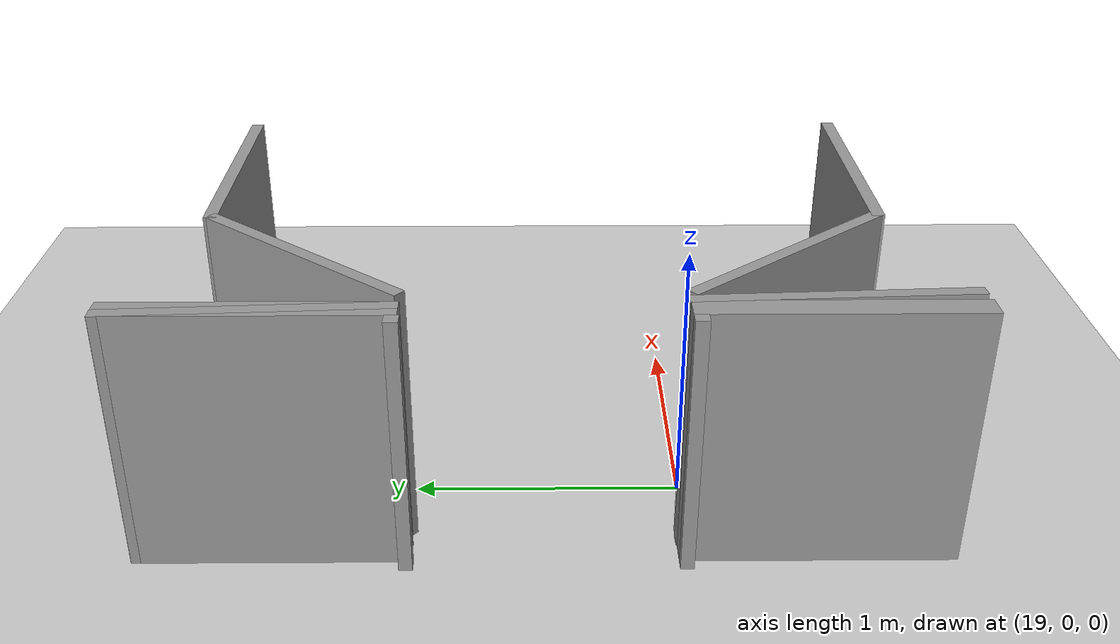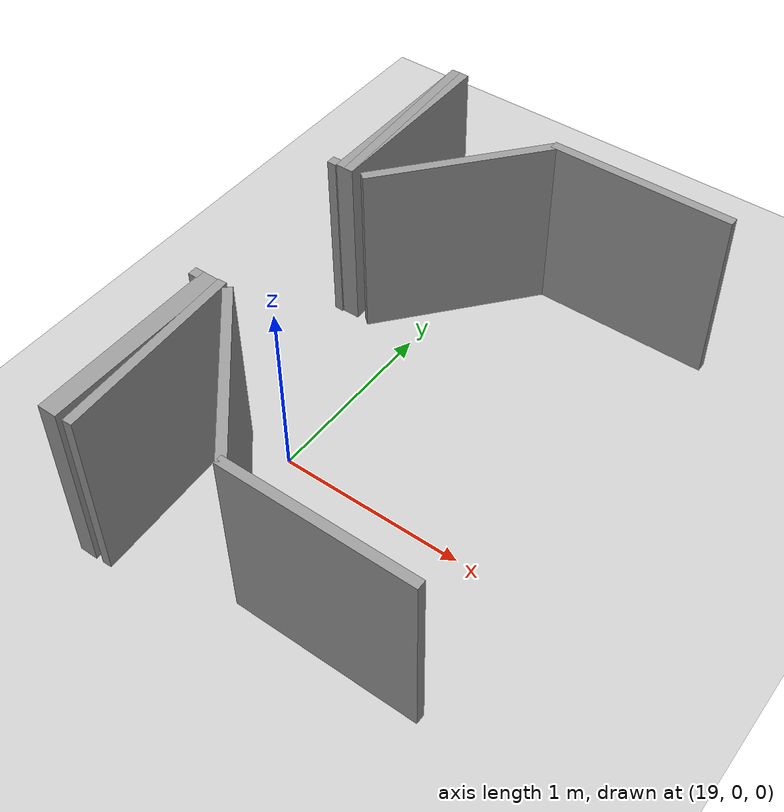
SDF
<sdf version="1.7">
 <world name="default">
  <model name="ground_plane">
   <static>1</static>
   <link name="link">
    <collision name="collision">
     <geometry><plane><normal>0 0 1</normal><size>100 100</size></plane></geometry>
     <surface>
      <contact><collide_bitmask>65535</collide_bitmask></contact>
      <friction><ode><mu>100</mu><mu2>50</mu2></ode></friction>
     </surface>
    </collision>
    <visual name="visual">
     <cast_shadows>0</cast_shadows>
     <geometry><plane><normal>0 0 1</normal><size>100 100</size></plane></geometry>
     <material>
      <script><uri>file://media/materials/scripts/gazebo.material</uri><name>Gazebo/Grey</name></script>
     </material>
    </visual>
   </link>
  </model>
  <model name="WSK_DOOR">
   <link name="link">
    <inertial>
     <mass>1</mass>
     <inertia>
      <ixx>0.166667</ixx>
      <ixy>0</ixy>
      <ixz>0</ixz>
      <iyy>0.166667</iyy>
      <iyz>0</iyz>
      <izz>0.166667</izz>
     </inertia>
    </inertial>
    <pose>-0 -1 0 0 -0 0</pose>
    <visual name="visual">
     <geometry><box><size>0.05 0.05 1</size></box></geometry>
     <material>
      <script><name>Gazebo/Grey</name><uri>file://media/materials/scripts/gazebo.material</uri></script>
      <shader type="pixel"><normal_map>__default__</normal_map></shader>
      <ambient>0.3 0.3 0.3 1</ambient>
      <diffuse>0.7 0.7 0.7 1</diffuse>
      <specular>0.01 0.01 0.01 1</specular>
      <emissive>0 0 0 1</emissive>
     </material>
    </visual>
    <collision name="collision">
     <geometry><box><size>0.05 0.05 1</size></box></geometry>
     <surface>
      <friction>
       <ode><mu>1</mu><mu2>1</mu2><fdir1>0 0 0</fdir1><slip1>0</slip1><slip2>0</slip2></ode>
       <torsional>
        <coefficient>1</coefficient>
        <patch_radius>0</patch_radius>
        <surface_radius>0</surface_radius>
        <use_patch_radius>1</use_patch_radius>
        <ode><slip>0</slip></ode>
       </torsional>
      </friction>
      <bounce><restitution_coefficient>0</restitution_coefficient><threshold>1e+06</threshold></bounce>
      <contact>
       <collide_without_contact>0</collide_without_contact>
       <collide_without_contact_bitmask>1</collide_without_contact_bitmask>
       <collide_bitmask>1</collide_bitmask>
       <ode>
        <soft_cfm>0</soft_cfm>
        <soft_erp>0.2</soft_erp>
        <kp>1e+13</kp>
        <kd>1</kd>
        <max_vel>0.01</max_vel>
        <min_depth>0</min_depth>
       </ode>
       <bullet>
        <split_impulse>1</split_impulse>
        <split_impulse_penetration_threshold>-0.01</split_impulse_penetration_threshold>
        <soft_cfm>0</soft_cfm>
        <soft_erp>0.2</soft_erp>
        <kp>1e+13</kp>
        <kd>1</kd>
       </bullet>
      </contact>
     </surface>
    </collision>
   </link>
   <link name="link_0">
    <inertial>
     <mass>1</mass>
     <inertia>
      <ixx>0.166667</ixx>
      <ixy>0</ixy>
      <ixz>0</ixz>
      <iyy>0.166667</iyy>
      <iyz>0</iyz>
      <izz>0.166667</izz>
     </inertia>
    </inertial>
    <pose>0.5 -2.37 -0 0 -0 0.7</pose>
    <visual name="visual">
     <geometry><box><size>0.05 1 1</size></box></geometry>
     <material>
      <lighting>1</lighting>
      <script><uri>file://media/materials/scripts/gazebo.material</uri><name>Gazebo/Grey</name></script>
      <shader type="pixel"><normal_map>__default__</normal_map></shader>
      <ambient>0.3 0.3 0.3 1</ambient>
      <diffuse>0.7 0.7 0.7 1</diffuse>
      <specular>0.01 0.01 0.01 1</specular>
      <emissive>0 0 0 1</emissive>
     </material>
    </visual>
    <collision name="collision">
     <geometry><box><size>0.05 1 1</size></box></geometry>
     <surface>
      <friction>
       <ode><mu>1</mu><mu2>1</mu2><fdir1>0 0 0</fdir1><slip1>0</slip1><slip2>0</slip2></ode>
       <torsional>
        <coefficient>1</coefficient>
        <patch_radius>0</patch_radius>
        <surface_radius>0</surface_radius>
        <use_patch_radius>1</use_patch_radius>
        <ode><slip>0</slip></ode>
       </torsional>
      </friction>
      <bounce><restitution_coefficient>0</restitution_coefficient><threshold>1e+06</threshold></bounce>
      <contact>
       <collide_without_contact>0</collide_without_contact>
       <collide_without_contact_bitmask>1</collide_without_contact_bitmask>
       <collide_bitmask>1</collide_bitmask>
       <ode>
        <soft_cfm>0</soft_cfm>
        <soft_erp>0.2</soft_erp>
        <kp>1e+13</kp>
        <kd>1</kd>
        <max_vel>0.01</max_vel>
        <min_depth>0</min_depth>
       </ode>
       <bullet>
        <split_impulse>1</split_impulse>
        <split_impulse_penetration_threshold>-0.01</split_impulse_penetration_threshold>
        <soft_cfm>0</soft_cfm>
        <soft_erp>0.2</soft_erp>
        <kp>1e+13</kp>
        <kd>1</kd>
       </bullet>
      </contact>
     </surface>
    </collision>
   </link>
   <link name="link_0_clone">
    <inertial>
     <mass>1</mass>
     <inertia>
      <ixx>0.166667</ixx>
      <ixy>0</ixy>
      <ixz>0</ixz>
      <iyy>0.166667</iyy>
      <iyz>0</iyz>
      <izz>0.166667</izz>
     </inertia>
    </inertial>
    <pose>0.5 -0.63 0 0 0 -0.7</pose>
    <visual name="visual">
     <geometry><box><size>0.05 1 1</size></box></geometry>
     <material>
      <lighting>1</lighting>
      <script><uri>file://media/materials/scripts/gazebo.material</uri><name>Gazebo/Grey</name></script>
      <shader type="pixel"><normal_map>__default__</normal_map></shader>
      <ambient>0.3 0.3 0.3 1</ambient>
      <diffuse>0.7 0.7 0.7 1</diffuse>
      <specular>0.01 0.01 0.01 1</specular>
      <emissive>0 0 0 1</emissive>
     </material>
    </visual>
    <collision name="collision">
     <geometry><box><size>0.05 1 1</size></box></geometry>
     <surface>
      <friction>
       <ode><mu>1</mu><mu2>1</mu2><fdir1>0 0 0</fdir1><slip1>0</slip1><slip2>0</slip2></ode>
       <torsional>
        <coefficient>1</coefficient>
        <patch_radius>0</patch_radius>
        <surface_radius>0</surface_radius>
        <use_patch_radius>1</use_patch_radius>
        <ode><slip>0</slip></ode>
       </torsional>
      </friction>
      <bounce><restitution_coefficient>0</restitution_coefficient><threshold>1e+06</threshold></bounce>
      <contact>
       <collide_without_contact>0</collide_without_contact>
       <collide_without_contact_bitmask>1</collide_without_contact_bitmask>
       <collide_bitmask>1</collide_bitmask>
       <ode>
        <soft_cfm>0</soft_cfm>
        <soft_erp>0.2</soft_erp>
        <kp>1e+13</kp>
        <kd>1</kd>
        <max_vel>0.01</max_vel>
        <min_depth>0</min_depth>
       </ode>
       <bullet>
        <split_impulse>1</split_impulse>
        <split_impulse_penetration_threshold>-0.01</split_impulse_penetration_threshold>
        <soft_cfm>0</soft_cfm>
        <soft_erp>0.2</soft_erp>
        <kp>1e+13</kp>
        <kd>1</kd>
       </bullet>
      </contact>
     </surface>
    </collision>
   </link>
   <link name="link_0_clone_clone">
    <inertial>
     <mass>1</mass>
     <inertia>
      <ixx>0.166667</ixx>
      <ixy>0</ixy>
      <ixz>0</ixz>
      <iyy>0.166667</iyy>
      <iyz>0</iyz>
      <izz>0.166667</izz>
     </inertia>
    </inertial>
    <pose>1.3 -0.25 -0 0 -0 1.57</pose>
    <visual name="visual">
     <geometry><box><size>0.05 1 1</size></box></geometry>
     <material>
      <lighting>1</lighting>
      <script><uri>file://media/materials/scripts/gazebo.material</uri><name>Gazebo/Grey</name></script>
      <shader type="pixel"><normal_map>__default__</normal_map></shader>
      <ambient>0.3 0.3 0.3 1</ambient>
      <diffuse>0.7 0.7 0.7 1</diffuse>
      <specular>0.01 0.01 0.01 1</specular>
      <emissive>0 0 0 1</emissive>
     </material>
    </visual>
    <collision name="collision">
     <geometry><box><size>0.05 1 1</size></box></geometry>
     <surface>
      <friction>
       <ode><mu>1</mu><mu2>1</mu2><fdir1>0 0 0</fdir1><slip1>0</slip1><slip2>0</slip2></ode>
       <torsional>
        <coefficient>1</coefficient>
        <patch_radius>0</patch_radius>
        <surface_radius>0</surface_radius>
        <use_patch_radius>1</use_patch_radius>
        <ode><slip>0</slip></ode>
       </torsional>
      </friction>
      <bounce><restitution_coefficient>0</restitution_coefficient><threshold>1e+06</threshold></bounce>
      <contact>
       <collide_without_contact>0</collide_without_contact>
       <collide_without_contact_bitmask>1</collide_without_contact_bitmask>
       <collide_bitmask>1</collide_bitmask>
       <ode>
        <soft_cfm>0</soft_cfm>
        <soft_erp>0.2</soft_erp>
        <kp>1e+13</kp>
        <kd>1</kd>
        <max_vel>0.01</max_vel>
        <min_depth>0</min_depth>
       </ode>
       <bullet>
        <split_impulse>1</split_impulse>
        <split_impulse_penetration_threshold>-0.01</split_impulse_penetration_threshold>
        <soft_cfm>0</soft_cfm>
        <soft_erp>0.2</soft_erp>
        <kp>1e+13</kp>
        <kd>1</kd>
       </bullet>
      </contact>
     </surface>
    </collision>
   </link>
   <link name="link_0_clone_clone_clone">
    <inertial>
     <mass>1</mass>
     <inertia>
      <ixx>0.166667</ixx>
      <ixy>0</ixy>
      <ixz>0</ixz>
      <iyy>0.166667</iyy>
      <iyz>0</iyz>
      <izz>0.166667</izz>
     </inertia>
    </inertial>
    <pose>1.3 -2.75 -0 0 -0 1.57</pose>
    <visual name="visual">
     <geometry><box><size>0.05 1 1</size></box></geometry>
     <material>
      <lighting>1</lighting>
      <script><uri>file://media/materials/scripts/gazebo.material</uri><name>Gazebo/Grey</name></script>
      <shader type="pixel"><normal_map>__default__</normal_map></shader>
      <ambient>0.3 0.3 0.3 1</ambient>
      <diffuse>0.7 0.7 0.7 1</diffuse>
      <specular>0.01 0.01 0.01 1</specular>
      <emissive>0 0 0 1</emissive>
     </material>
    </visual>
    <collision name="collision">
     <geometry><box><size>0.05 1 1</size></box></geometry>
     <surface>
      <friction>
       <ode><mu>1</mu><mu2>1</mu2><fdir1>0 0 0</fdir1><slip1>0</slip1><slip2>0</slip2></ode>
       <torsional>
        <coefficient>1</coefficient>
        <patch_radius>0</patch_radius>
        <surface_radius>0</surface_radius>
        <use_patch_radius>1</use_patch_radius>
        <ode><slip>0</slip></ode>
       </torsional>
      </friction>
      <bounce><restitution_coefficient>0</restitution_coefficient><threshold>1e+06</threshold></bounce>
      <contact>
       <collide_without_contact>0</collide_without_contact>
       <collide_without_contact_bitmask>1</collide_without_contact_bitmask>
       <collide_bitmask>1</collide_bitmask>
       <ode>
        <soft_cfm>0</soft_cfm>
        <soft_erp>0.2</soft_erp>
        <kp>1e+13</kp>
        <kd>1</kd>
        <max_vel>0.01</max_vel>
        <min_depth>0</min_depth>
       </ode>
       <bullet>
        <split_impulse>1</split_impulse>
        <split_impulse_penetration_threshold>-0.01</split_impulse_penetration_threshold>
        <soft_cfm>0</soft_cfm>
        <soft_erp>0.2</soft_erp>
        <kp>1e+13</kp>
        <kd>1</kd>
       </bullet>
      </contact>
     </surface>
    </collision>
   </link>
   <link name="link_clone">
    <inertial>
     <mass>1</mass>
     <inertia>
      <ixx>0.166667</ixx>
      <ixy>0</ixy>
      <ixz>0</ixz>
      <iyy>0.166667</iyy>
      <iyz>0</iyz>
      <izz>0.166667</izz>
     </inertia>
    </inertial>
    <pose>-0 -2 -0 0 -0 0</pose>
    <visual name="visual">
     <geometry><box><size>0.05 0.05 1</size></box></geometry>
     <material>
      <script><name>Gazebo/Grey</name><uri>file://media/materials/scripts/gazebo.material</uri></script>
      <shader type="pixel"><normal_map>__default__</normal_map></shader>
      <ambient>0.3 0.3 0.3 1</ambient>
      <diffuse>0.7 0.7 0.7 1</diffuse>
      <specular>0.01 0.01 0.01 1</specular>
      <emissive>0 0 0 1</emissive>
     </material>
    </visual>
    <collision name="collision">
     <geometry><box><size>0.05 0.05 1</size></box></geometry>
     <surface>
      <friction>
       <ode><mu>1</mu><mu2>1</mu2><fdir1>0 0 0</fdir1><slip1>0</slip1><slip2>0</slip2></ode>
       <torsional>
        <coefficient>1</coefficient>
        <patch_radius>0</patch_radius>
        <surface_radius>0</surface_radius>
        <use_patch_radius>1</use_patch_radius>
        <ode><slip>0</slip></ode>
       </torsional>
      </friction>
      <bounce><restitution_coefficient>0</restitution_coefficient><threshold>1e+06</threshold></bounce>
      <contact>
       <collide_without_contact>0</collide_without_contact>
       <collide_without_contact_bitmask>1</collide_without_contact_bitmask>
       <collide_bitmask>1</collide_bitmask>
       <ode>
        <soft_cfm>0</soft_cfm>
        <soft_erp>0.2</soft_erp>
        <kp>1e+13</kp>
        <kd>1</kd>
        <max_vel>0.01</max_vel>
        <min_depth>0</min_depth>
       </ode>
       <bullet>
        <split_impulse>1</split_impulse>
        <split_impulse_penetration_threshold>-0.01</split_impulse_penetration_threshold>
        <soft_cfm>0</soft_cfm>
        <soft_erp>0.2</soft_erp>
        <kp>1e+13</kp>
        <kd>1</kd>
       </bullet>
      </contact>
     </surface>
    </collision>
   </link>
   <static>1</static>
   <pose>18.5345 2.00771 0.5 0 -0 0</pose>
  </model>
  <model name="dummy_door">
   <link name="link">
    <inertial>
     <mass>1</mass>
     <inertia>
      <ixx>0.166667</ixx>
      <ixy>0</ixy>
      <ixz>0</ixz>
      <iyy>0.166667</iyy>
      <iyz>0</iyz>
      <izz>0.166667</izz>
     </inertia>
    </inertial>
    <pose>-0.045761 1.66847 -0 0 -0 0</pose>
    <visual name="visual">
     <geometry><box><size>0.05 1 1</size></box></geometry>
     <material>
      <script><name>Gazebo/Grey</name><uri>file://media/materials/scripts/gazebo.material</uri></script>
      <shader type="pixel"><normal_map>__default__</normal_map></shader>
      <ambient>0.3 0.3 0.3 1</ambient>
      <diffuse>0.7 0.7 0.7 1</diffuse>
      <specular>0.01 0.01 0.01 1</specular>
      <emissive>0 0 0 1</emissive>
     </material>
    </visual>
    <collision name="collision">
     <geometry><box><size>0.05 1 1</size></box></geometry>
     <surface>
      <friction>
       <ode><mu>1</mu><mu2>1</mu2><fdir1>0 0 0</fdir1><slip1>0</slip1><slip2>0</slip2></ode>
       <torsional>
        <coefficient>1</coefficient>
        <patch_radius>0</patch_radius>
        <surface_radius>0</surface_radius>
        <use_patch_radius>1</use_patch_radius>
        <ode><slip>0</slip></ode>
       </torsional>
      </friction>
      <bounce><restitution_coefficient>0</restitution_coefficient><threshold>1e+06</threshold></bounce>
      <contact>
       <collide_without_contact>0</collide_without_contact>
       <collide_without_contact_bitmask>1</collide_without_contact_bitmask>
       <collide_bitmask>1</collide_bitmask>
       <ode>
        <soft_cfm>0</soft_cfm>
        <soft_erp>0.2</soft_erp>
        <kp>1e+13</kp>
        <kd>1</kd>
        <max_vel>0.01</max_vel>
        <min_depth>0</min_depth>
       </ode>
       <bullet>
        <split_impulse>1</split_impulse>
        <split_impulse_penetration_threshold>-0.01</split_impulse_penetration_threshold>
        <soft_cfm>0</soft_cfm>
        <soft_erp>0.2</soft_erp>
        <kp>1e+13</kp>
        <kd>1</kd>
       </bullet>
      </contact>
     </surface>
    </collision>
   </link>
   <link name="link_clone">
    <inertial>
     <mass>1</mass>
     <inertia>
      <ixx>0.166667</ixx>
      <ixy>0</ixy>
      <ixz>0</ixz>
      <iyy>0.166667</iyy>
      <iyz>0</iyz>
      <izz>0.166667</izz>
     </inertia>
    </inertial>
    <pose>-0.033569 3.62525 -0 0 -0 0</pose>
    <visual name="visual">
     <geometry><box><size>0.05 1 1</size></box></geometry>
     <material>
      <script><name>Gazebo/Grey</name><uri>file://media/materials/scripts/gazebo.material</uri></script>
      <shader type="pixel"><normal_map>__default__</normal_map></shader>
      <ambient>0.3 0.3 0.3 1</ambient>
      <diffuse>0.7 0.7 0.7 1</diffuse>
      <specular>0.01 0.01 0.01 1</specular>
      <emissive>0 0 0 1</emissive>
     </material>
    </visual>
    <collision name="collision">
     <geometry><box><size>0.05 1 1</size></box></geometry>
     <surface>
      <friction>
       <ode><mu>1</mu><mu2>1</mu2><fdir1>0 0 0</fdir1><slip1>0</slip1><slip2>0</slip2></ode>
       <torsional>
        <coefficient>1</coefficient>
        <patch_radius>0</patch_radius>
        <surface_radius>0</surface_radius>
        <use_patch_radius>1</use_patch_radius>
        <ode><slip>0</slip></ode>
       </torsional>
      </friction>
      <bounce><restitution_coefficient>0</restitution_coefficient><threshold>1e+06</threshold></bounce>
      <contact>
       <collide_without_contact>0</collide_without_contact>
       <collide_without_contact_bitmask>1</collide_without_contact_bitmask>
       <collide_bitmask>1</collide_bitmask>
       <ode>
        <soft_cfm>0</soft_cfm>
        <soft_erp>0.2</soft_erp>
        <kp>1e+13</kp>
        <kd>1</kd>
        <max_vel>0.01</max_vel>
        <min_depth>0</min_depth>
       </ode>
       <bullet>
        <split_impulse>1</split_impulse>
        <split_impulse_penetration_threshold>-0.01</split_impulse_penetration_threshold>
        <soft_cfm>0</soft_cfm>
        <soft_erp>0.2</soft_erp>
        <kp>1e+13</kp>
        <kd>1</kd>
       </bullet>
      </contact>
     </surface>
    </collision>
   </link>
   <static>0</static>
   <pose>18.8215 -2.12697 0.5 -0 -1e-06 0.0504</pose>
  </model>
  <model name="unit_box">
   <link name="link">
    <inertial>
     <mass>1</mass>
     <inertia>
      <ixx>0.166667</ixx>
      <ixy>0</ixy>
      <ixz>0</ixz>
      <iyy>0.166667</iyy>
      <iyz>0</iyz>
      <izz>0.166667</izz>
     </inertia>
    </inertial>
    <visual name="visual">
     <geometry><box><size>0.1 1 1</size></box></geometry>
     <material>
      <script><name>Gazebo/Grey</name><uri>file://media/materials/scripts/gazebo.material</uri></script>
      <shader type="pixel"><normal_map>__default__</normal_map></shader>
      <ambient>0.3 0.3 0.3 1</ambient>
      <diffuse>0.7 0.7 0.7 1</diffuse>
      <specular>0.01 0.01 0.01 1</specular>
      <emissive>0 0 0 1</emissive>
     </material>
    </visual>
    <collision name="collision">
     <geometry><box><size>0.1 1 1</size></box></geometry>
     <surface>
      <friction>
       <ode><mu>1</mu><mu2>1</mu2><fdir1>0 0 0</fdir1><slip1>0</slip1><slip2>0</slip2></ode>
       <torsional>
        <coefficient>1</coefficient>
        <patch_radius>0</patch_radius>
        <surface_radius>0</surface_radius>
        <use_patch_radius>1</use_patch_radius>
        <ode><slip>0</slip></ode>
       </torsional>
      </friction>
      <bounce><restitution_coefficient>0</restitution_coefficient><threshold>1e+06</threshold></bounce>
      <contact>
       <collide_without_contact>0</collide_without_contact>
       <collide_without_contact_bitmask>1</collide_without_contact_bitmask>
       <collide_bitmask>1</collide_bitmask>
       <ode>
        <soft_cfm>0</soft_cfm>
        <soft_erp>0.2</soft_erp>
        <kp>1e+13</kp>
        <kd>1</kd>
        <max_vel>0.01</max_vel>
        <min_depth>0</min_depth>
       </ode>
       <bullet>
        <split_impulse>1</split_impulse>
        <split_impulse_penetration_threshold>-0.01</split_impulse_penetration_threshold>
        <soft_cfm>0</soft_cfm>
        <soft_erp>0.2</soft_erp>
        <kp>1e+13</kp>
        <kd>1</kd>
       </bullet>
      </contact>
     </surface>
    </collision>
   </link>
   <static>0</static>
   <pose>18.6069 1.49133 0.499991 1e-05 -0 0</pose>
  </model>
  <model name="unit_box_clone">
   <link name="link">
    <inertial>
     <mass>1</mass>
     <inertia>
      <ixx>0.166667</ixx>
      <ixy>0</ixy>
      <ixz>0</ixz>
      <iyy>0.166667</iyy>
      <iyz>0</iyz>
      <izz>0.166667</izz>
     </inertia>
    </inertial>
    <visual name="visual">
     <geometry><box><size>0.1 1 1</size></box></geometry>
     <material>
      <script><name>Gazebo/Grey</name><uri>file://media/materials/scripts/gazebo.material</uri></script>
      <shader type="pixel"><normal_map>__default__</normal_map></shader>
      <ambient>0.3 0.3 0.3 1</ambient>
      <diffuse>0.7 0.7 0.7 1</diffuse>
      <specular>0.01 0.01 0.01 1</specular>
      <emissive>0 0 0 1</emissive>
     </material>
    </visual>
    <collision name="collision">
     <geometry><box><size>0.1 1 1</size></box></geometry>
     <surface>
      <friction>
       <ode><mu>1</mu><mu2>1</mu2><fdir1>0 0 0</fdir1><slip1>0</slip1><slip2>0</slip2></ode>
       <torsional>
        <coefficient>1</coefficient>
        <patch_radius>0</patch_radius>
        <surface_radius>0</surface_radius>
        <use_patch_radius>1</use_patch_radius>
        <ode><slip>0</slip></ode>
       </torsional>
      </friction>
      <bounce><restitution_coefficient>0</restitution_coefficient><threshold>1e+06</threshold></bounce>
      <contact>
       <collide_without_contact>0</collide_without_contact>
       <collide_without_contact_bitmask>1</collide_without_contact_bitmask>
       <collide_bitmask>1</collide_bitmask>
       <ode>
        <soft_cfm>0</soft_cfm>
        <soft_erp>0.2</soft_erp>
        <kp>1e+13</kp>
        <kd>1</kd>
        <max_vel>0.01</max_vel>
        <min_depth>0</min_depth>
       </ode>
       <bullet>
        <split_impulse>1</split_impulse>
        <split_impulse_penetration_threshold>-0.01</split_impulse_penetration_threshold>
        <soft_cfm>0</soft_cfm>
        <soft_erp>0.2</soft_erp>
        <kp>1e+13</kp>
        <kd>1</kd>
       </bullet>
      </contact>
     </surface>
    </collision>
   </link>
   <static>0</static>
   <pose>18.6048 -0.467406 0.499991 1e-05 -0 0</pose>
  </model>
 </world>
</sdf>
